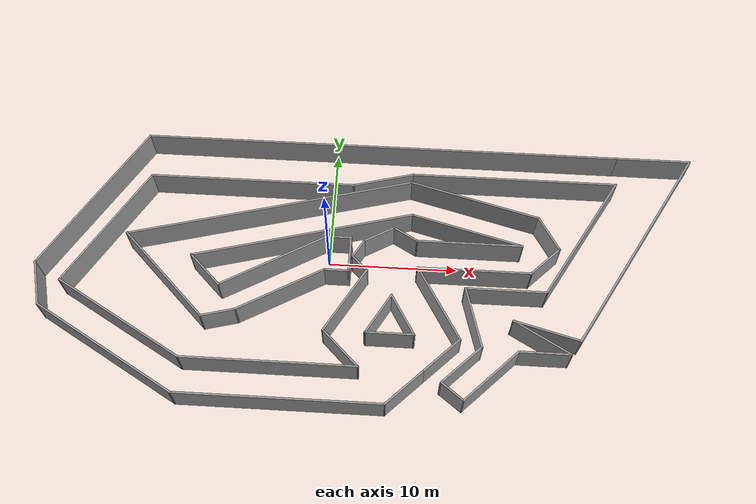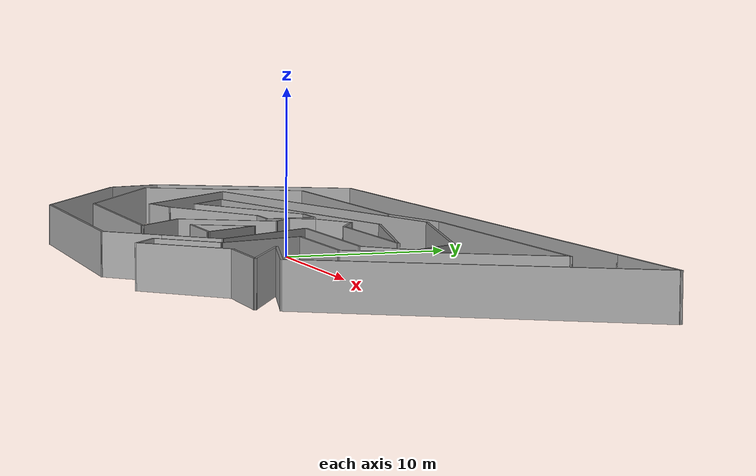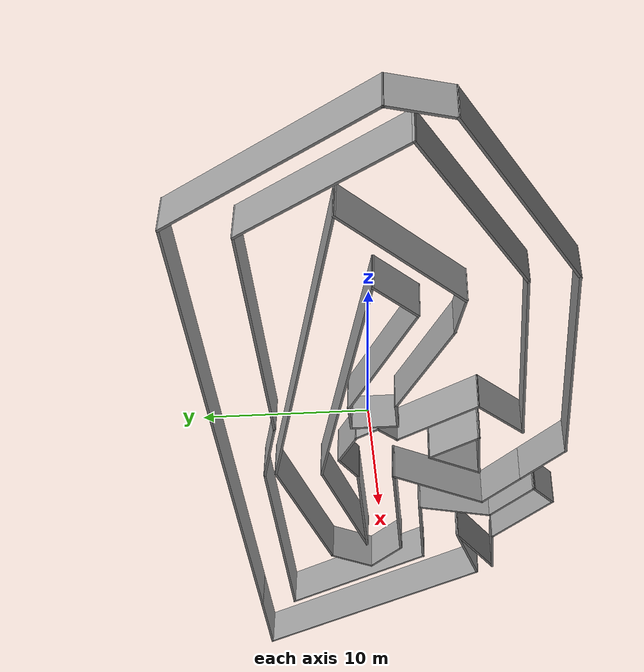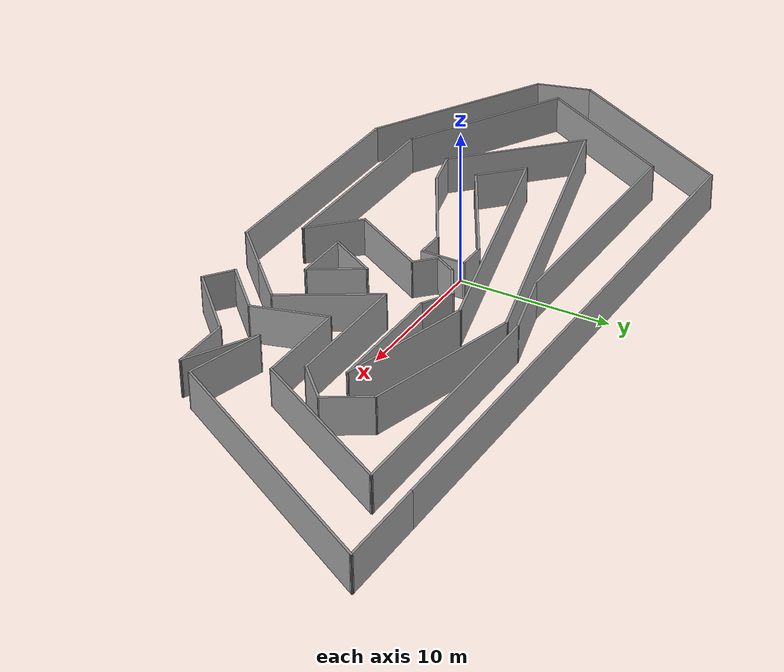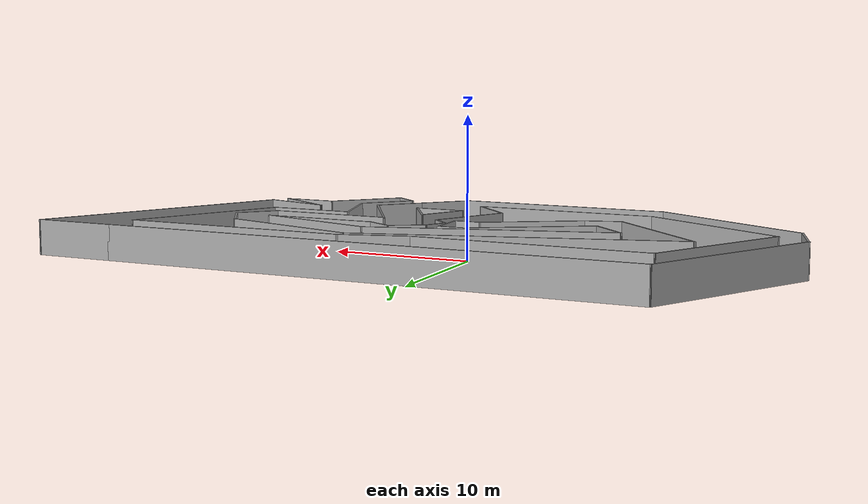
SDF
<?xml version='1.0'?>
<sdf version='1.7'>
  <model name='test_track'>
    <pose>3.06241 -1.25515 0 0 -0 0</pose>
    <link name='Wall_10'>
      <collision name='Wall_10_Collision'>
        <geometry>
          <box>
            <size>2 0.15 2.5</size>
          </box>
        </geometry>
        <pose>0 0 1.25 0 -0 0</pose>
      </collision>
      <visual name='Wall_10_Visual'>
        <pose>0 0 1.25 0 -0 0</pose>
        <geometry>
          <box>
            <size>2 0.15 2.5</size>
          </box>
        </geometry>
        <material>
          <script>
            <uri>file://media/materials/scripts/gazebo.material</uri>
            <name>Gazebo/Grey</name>
          </script>
          <ambient>1 1 1 1</ambient>
        </material>
        <meta>
          <layer>0</layer>
        </meta>
      </visual>
      <pose>-2.32297 2.39229 0 0 -0 3.14159</pose>
    </link>
    <link name='Wall_11'>
      <collision name='Wall_11_Collision'>
        <geometry>
          <box>
            <size>9.25 0.15 2.5</size>
          </box>
        </geometry>
        <pose>0 0 1.25 0 -0 0</pose>
      </collision>
      <visual name='Wall_11_Visual'>
        <pose>0 0 1.25 0 -0 0</pose>
        <geometry>
          <box>
            <size>9.25 0.15 2.5</size>
          </box>
        </geometry>
        <material>
          <script>
            <uri>file://media/materials/scripts/gazebo.material</uri>
            <name>Gazebo/Grey</name>
          </script>
          <ambient>1 1 1 1</ambient>
        </material>
        <meta>
          <layer>0</layer>
        </meta>
      </visual>
      <pose>-7.18839 0.117285 0 0 -0 -2.61799</pose>
    </link>
    <link name='Wall_13'>
      <collision name='Wall_13_Collision'>
        <geometry>
          <box>
            <size>7.5 0.15 2.5</size>
          </box>
        </geometry>
        <pose>0 0 1.25 0 -0 0</pose>
      </collision>
      <visual name='Wall_13_Visual'>
        <pose>0 0 1.25 0 -0 0</pose>
        <geometry>
          <box>
            <size>7.5 0.15 2.5</size>
          </box>
        </geometry>
        <material>
          <script>
            <uri>file://media/materials/scripts/gazebo.material</uri>
            <name>Gazebo/Grey</name>
          </script>
          <ambient>1 1 1 1</ambient>
        </material>
        <meta>
          <layer>0</layer>
        </meta>
      </visual>
      <pose>-6.43061 -2.29521 0 0 -0 -2.61799</pose>
    </link>
    <link name='Wall_15'>
      <collision name='Wall_15_Collision'>
        <geometry>
          <box>
            <size>3.5 0.15 2.5</size>
          </box>
        </geometry>
        <pose>0 0 1.25 0 -0 0</pose>
      </collision>
      <visual name='Wall_15_Visual'>
        <pose>0 0 1.25 0 -0 0</pose>
        <geometry>
          <box>
            <size>3.5 0.15 2.5</size>
          </box>
        </geometry>
        <material>
          <script>
            <uri>file://media/materials/scripts/gazebo.material</uri>
            <name>Gazebo/Grey</name>
          </script>
          <ambient>1 1 1 1</ambient>
        </material>
        <meta>
          <layer>0</layer>
        </meta>
      </visual>
      <pose>-12.3132 -0.973311 0 0 -0 2.35619</pose>
    </link>
    <link name='Wall_16'>
      <collision name='Wall_16_Collision'>
        <geometry>
          <box>
            <size>17.5 0.15 2.5</size>
          </box>
        </geometry>
        <pose>0 0 1.25 0 -0 0</pose>
      </collision>
      <visual name='Wall_16_Visual'>
        <pose>0 0 1.25 0 -0 0</pose>
        <geometry>
          <box>
            <size>17.5 0.15 2.5</size>
          </box>
        </geometry>
        <material>
          <script>
            <uri>file://media/materials/scripts/gazebo.material</uri>
            <name>Gazebo/Grey</name>
          </script>
          <ambient>1 1 1 1</ambient>
        </material>
        <meta>
          <layer>0</layer>
        </meta>
      </visual>
      <pose>-5.1182 2.45635 0 0 -0 0.261799</pose>
    </link>
    <link name='Wall_18'>
      <collision name='Wall_18_Collision'>
        <geometry>
          <box>
            <size>2.75 0.15 2.5</size>
          </box>
        </geometry>
        <pose>0 0 1.25 0 -0 0</pose>
      </collision>
      <visual name='Wall_18_Visual'>
        <pose>0 0 1.25 0 -0 0</pose>
        <geometry>
          <box>
            <size>2.75 0.15 2.5</size>
          </box>
        </geometry>
        <material>
          <script>
            <uri>file://media/materials/scripts/gazebo.material</uri>
            <name>Gazebo/Grey</name>
          </script>
          <ambient>1 1 1 1</ambient>
        </material>
        <meta>
          <layer>0</layer>
        </meta>
      </visual>
      <pose>-10.869 -4.46918 0 0 -0 -2.87979</pose>
    </link>
    <link name='Wall_19'>
      <collision name='Wall_19_Collision'>
        <geometry>
          <box>
            <size>9.5 0.15 2.5</size>
          </box>
        </geometry>
        <pose>0 0 1.25 0 -0 0</pose>
      </collision>
      <visual name='Wall_19_Visual'>
        <pose>0 0 1.25 0 -0 0</pose>
        <geometry>
          <box>
            <size>9.5 0.15 2.5</size>
          </box>
        </geometry>
        <material>
          <script>
            <uri>file://media/materials/scripts/gazebo.material</uri>
            <name>Gazebo/Grey</name>
          </script>
          <ambient>1 1 1 1</ambient>
        </material>
        <meta>
          <layer>0</layer>
        </meta>
      </visual>
      <pose>-15.4304 -1.49992 0 0 -0 2.35619</pose>
    </link>
    <link name='Wall_20'>
      <collision name='Wall_20_Collision'>
        <geometry>
          <box>
            <size>22.75 0.15 2.5</size>
          </box>
        </geometry>
        <pose>0 0 1.25 0 -0 0</pose>
      </collision>
      <visual name='Wall_20_Visual'>
        <pose>0 0 1.25 0 -0 0</pose>
        <geometry>
          <box>
            <size>22.75 0.15 2.5</size>
          </box>
        </geometry>
        <material>
          <script>
            <uri>file://media/materials/scripts/gazebo.material</uri>
            <name>Gazebo/Grey</name>
          </script>
          <ambient>1 1 1 1</ambient>
        </material>
        <meta>
          <layer>0</layer>
        </meta>
      </visual>
      <pose>-7.82115 4.73046 0 0 -0 0.261799</pose>
    </link>
    <link name='Wall_21'>
      <collision name='Wall_21_Collision'>
        <geometry>
          <box>
            <size>10.5 0.15 2.5</size>
          </box>
        </geometry>
        <pose>0 0 1.25 0 -0 0</pose>
      </collision>
      <visual name='Wall_21_Visual'>
        <pose>0 0 1.25 0 -0 0</pose>
        <geometry>
          <box>
            <size>10.5 0.15 2.5</size>
          </box>
        </geometry>
        <material>
          <script>
            <uri>file://media/materials/scripts/gazebo.material</uri>
            <name>Gazebo/Grey</name>
          </script>
          <ambient>1 1 1 1</ambient>
        </material>
        <meta>
          <layer>0</layer>
        </meta>
      </visual>
      <pose>8.09248 6.31573 0 0 -0 -0.261799</pose>
    </link>
    <link name='Wall_23'>
      <collision name='Wall_23_Collision'>
        <geometry>
          <box>
            <size>9 0.15 2.5</size>
          </box>
        </geometry>
        <pose>0 0 1.25 0 -0 0</pose>
      </collision>
      <visual name='Wall_23_Visual'>
        <pose>0 0 1.25 0 -0 0</pose>
        <geometry>
          <box>
            <size>9 0.15 2.5</size>
          </box>
        </geometry>
        <material>
          <script>
            <uri>file://media/materials/scripts/gazebo.material</uri>
            <name>Gazebo/Grey</name>
          </script>
          <ambient>1 1 1 1</ambient>
        </material>
        <meta>
          <layer>0</layer>
        </meta>
      </visual>
      <pose>7.53543 3.55633 0 0 -0 -0.261799</pose>
    </link>
    <link name='Wall_24'>
      <collision name='Wall_24_Collision'>
        <geometry>
          <box>
            <size>8.25 0.15 2.5</size>
          </box>
        </geometry>
        <pose>0 0 1.25 0 -0 0</pose>
      </collision>
      <visual name='Wall_24_Visual'>
        <pose>0 0 1.25 0 -0 0</pose>
        <geometry>
          <box>
            <size>8.25 0.15 2.5</size>
          </box>
        </geometry>
        <material>
          <script>
            <uri>file://media/materials/scripts/gazebo.material</uri>
            <name>Gazebo/Grey</name>
          </script>
          <ambient>1 1 1 1</ambient>
        </material>
        <meta>
          <layer>0</layer>
        </meta>
      </visual>
      <pose>7.75965 2.41106 0 0 -0 3.14159</pose>
    </link>
    <link name='Wall_26'>
      <collision name='Wall_26_Collision'>
        <geometry>
          <box>
            <size>3.25 0.15 2.5</size>
          </box>
        </geometry>
        <pose>0 0 1.25 0 -0 0</pose>
      </collision>
      <visual name='Wall_26_Visual'>
        <pose>0 0 1.25 0 -0 0</pose>
        <geometry>
          <box>
            <size>3.25 0.15 2.5</size>
          </box>
        </geometry>
        <material>
          <script>
            <uri>file://media/materials/scripts/gazebo.material</uri>
            <name>Gazebo/Grey</name>
          </script>
          <ambient>1 1 1 1</ambient>
        </material>
        <meta>
          <layer>0</layer>
        </meta>
      </visual>
      <pose>13.8661 3.634 0 0 -0 -1.0472</pose>
    </link>
    <link name='Wall_27'>
      <collision name='Wall_27_Collision'>
        <geometry>
          <box>
            <size>3.25 0.15 2.5</size>
          </box>
        </geometry>
        <pose>0 0 1.25 0 -0 0</pose>
      </collision>
      <visual name='Wall_27_Visual'>
        <pose>0 0 1.25 0 -0 0</pose>
        <geometry>
          <box>
            <size>3.25 0.15 2.5</size>
          </box>
        </geometry>
        <material>
          <script>
            <uri>file://media/materials/scripts/gazebo.material</uri>
            <name>Gazebo/Grey</name>
          </script>
          <ambient>1 1 1 1</ambient>
        </material>
        <meta>
          <layer>0</layer>
        </meta>
      </visual>
      <pose>13.5451 1.19564 0 0 -0 -2.35619</pose>
    </link>
    <link name='Wall_28'>
      <collision name='Wall_28_Collision'>
        <geometry>
          <box>
            <size>8.75 0.15 2.5</size>
          </box>
        </geometry>
        <pose>0 0 1.25 0 -0 0</pose>
      </collision>
      <visual name='Wall_28_Visual'>
        <pose>0 0 1.25 0 -0 0</pose>
        <geometry>
          <box>
            <size>8.75 0.15 2.5</size>
          </box>
        </geometry>
        <material>
          <script>
            <uri>file://media/materials/scripts/gazebo.material</uri>
            <name>Gazebo/Grey</name>
          </script>
          <ambient>1 1 1 1</ambient>
        </material>
        <meta>
          <layer>0</layer>
        </meta>
      </visual>
      <pose>8.14911 0.099628 0 0 -0 3.14159</pose>
    </link>
    <link name='Wall_30'>
      <collision name='Wall_30_Collision'>
        <geometry>
          <box>
            <size>2.25 0.15 2.5</size>
          </box>
        </geometry>
        <pose>0 0 1.25 0 -0 0</pose>
      </collision>
      <visual name='Wall_30_Visual'>
        <pose>0 0 1.25 0 -0 0</pose>
        <geometry>
          <box>
            <size>2.25 0.15 2.5</size>
          </box>
        </geometry>
        <material>
          <script>
            <uri>file://media/materials/scripts/gazebo.material</uri>
            <name>Gazebo/Grey</name>
          </script>
          <ambient>1 1 1 1</ambient>
        </material>
        <meta>
          <layer>0</layer>
        </meta>
      </visual>
      <pose>2.80032 2.93606 0 0 -0 2.61799</pose>
    </link>
    <link name='Wall_31'>
      <collision name='Wall_31_Collision'>
        <geometry>
          <box>
            <size>2.75 0.15 2.5</size>
          </box>
        </geometry>
        <pose>0 0 1.25 0 -0 0</pose>
      </collision>
      <visual name='Wall_31_Visual'>
        <pose>0 0 1.25 0 -0 0</pose>
        <geometry>
          <box>
            <size>2.75 0.15 2.5</size>
          </box>
        </geometry>
        <material>
          <script>
            <uri>file://media/materials/scripts/gazebo.material</uri>
            <name>Gazebo/Grey</name>
          </script>
          <ambient>1 1 1 1</ambient>
        </material>
        <meta>
          <layer>0</layer>
        </meta>
      </visual>
      <pose>0.765162 2.81106 0 0 -0 -2.61799</pose>
    </link>
    <link name='Wall_32'>
      <collision name='Wall_32_Collision'>
        <geometry>
          <box>
            <size>1.75 0.15 2.5</size>
          </box>
        </geometry>
        <pose>0 0 1.25 0 -0 0</pose>
      </collision>
      <visual name='Wall_32_Visual'>
        <pose>0 0 1.25 0 -0 0</pose>
        <geometry>
          <box>
            <size>1.75 0.15 2.5</size>
          </box>
        </geometry>
        <material>
          <script>
            <uri>file://media/materials/scripts/gazebo.material</uri>
            <name>Gazebo/Grey</name>
          </script>
          <ambient>1 1 1 1</ambient>
        </material>
        <meta>
          <layer>0</layer>
        </meta>
      </visual>
      <pose>-0.760671 1.46823 0 0 -0 -2.0944</pose>
    </link>
    <link name='Wall_33'>
      <collision name='Wall_33_Collision'>
        <geometry>
          <box>
            <size>1.75 0.15 2.5</size>
          </box>
        </geometry>
        <pose>0 0 1.25 0 -0 0</pose>
      </collision>
      <visual name='Wall_33_Visual'>
        <pose>0 0 1.25 0 -0 0</pose>
        <geometry>
          <box>
            <size>1.75 0.15 2.5</size>
          </box>
        </geometry>
        <material>
          <script>
            <uri>file://media/materials/scripts/gazebo.material</uri>
            <name>Gazebo/Grey</name>
          </script>
          <ambient>1 1 1 1</ambient>
        </material>
        <meta>
          <layer>0</layer>
        </meta>
      </visual>
      <pose>-0.594985 0.209729 0 0 -0 -0.785398</pose>
    </link>
    <link name='Wall_34'>
      <collision name='Wall_34_Collision'>
        <geometry>
          <box>
            <size>6 0.15 2.5</size>
          </box>
        </geometry>
        <pose>0 0 1.25 0 -0 0</pose>
      </collision>
      <visual name='Wall_34_Visual'>
        <pose>0 0 1.25 0 -0 0</pose>
        <geometry>
          <box>
            <size>6 0.15 2.5</size>
          </box>
        </geometry>
        <material>
          <script>
            <uri>file://media/materials/scripts/gazebo.material</uri>
            <name>Gazebo/Grey</name>
          </script>
          <ambient>1 1 1 1</ambient>
        </material>
        <meta>
          <layer>0</layer>
        </meta>
      </visual>
      <pose>-1.4918 -2.88908 0 0 -0 -2.0944</pose>
    </link>
    <link name='Wall_36'>
      <collision name='Wall_36_Collision'>
        <geometry>
          <box>
            <size>6.75 0.15 2.5</size>
          </box>
        </geometry>
        <pose>0 0 1.25 0 -0 0</pose>
      </collision>
      <visual name='Wall_36_Visual'>
        <pose>0 0 1.25 0 -0 0</pose>
        <geometry>
          <box>
            <size>6.75 0.15 2.5</size>
          </box>
        </geometry>
        <material>
          <script>
            <uri>file://media/materials/scripts/gazebo.material</uri>
            <name>Gazebo/Grey</name>
          </script>
          <ambient>1 1 1 1</ambient>
        </material>
        <meta>
          <layer>0</layer>
        </meta>
      </visual>
      <pose>5.49911 -2.75826 0 0 -0 -1.0472</pose>
    </link>
    <link name='Wall_38'>
      <collision name='Wall_38_Collision'>
        <geometry>
          <box>
            <size>3.75 0.15 2.5</size>
          </box>
        </geometry>
        <pose>0 0 1.25 0 -0 0</pose>
      </collision>
      <visual name='Wall_38_Visual'>
        <pose>0 0 1.25 0 -0 0</pose>
        <geometry>
          <box>
            <size>3.75 0.15 2.5</size>
          </box>
        </geometry>
        <material>
          <script>
            <uri>file://media/materials/scripts/gazebo.material</uri>
            <name>Gazebo/Grey</name>
          </script>
          <ambient>1 1 1 1</ambient>
        </material>
        <meta>
          <layer>0</layer>
        </meta>
      </visual>
      <pose>1.06374 -3.87062 0 0 -0 -2.0944</pose>
    </link>
    <link name='Wall_39'>
      <collision name='Wall_39_Collision'>
        <geometry>
          <box>
            <size>3.75 0.15 2.5</size>
          </box>
        </geometry>
        <pose>0 0 1.25 0 -0 0</pose>
      </collision>
      <visual name='Wall_39_Visual'>
        <pose>0 0 1.25 0 -0 0</pose>
        <geometry>
          <box>
            <size>3.75 0.15 2.5</size>
          </box>
        </geometry>
        <material>
          <script>
            <uri>file://media/materials/scripts/gazebo.material</uri>
            <name>Gazebo/Grey</name>
          </script>
          <ambient>1 1 1 1</ambient>
        </material>
        <meta>
          <layer>0</layer>
        </meta>
      </visual>
      <pose>1.96374 -5.42947 0 0 -0 0</pose>
    </link>
    <link name='Wall_40'>
      <collision name='Wall_40_Collision'>
        <geometry>
          <box>
            <size>3.75 0.15 2.5</size>
          </box>
        </geometry>
        <pose>0 0 1.25 0 -0 0</pose>
      </collision>
      <visual name='Wall_40_Visual'>
        <pose>0 0 1.25 0 -0 0</pose>
        <geometry>
          <box>
            <size>3.75 0.15 2.5</size>
          </box>
        </geometry>
        <material>
          <script>
            <uri>file://media/materials/scripts/gazebo.material</uri>
            <name>Gazebo/Grey</name>
          </script>
          <ambient>1 1 1 1</ambient>
        </material>
        <meta>
          <layer>0</layer>
        </meta>
      </visual>
      <pose>2.86374 -3.87062 0 0 -0 2.0944</pose>
    </link>
    <link name='Wall_42'>
      <collision name='Wall_42_Collision'>
        <geometry>
          <box>
            <size>4 0.15 2.5</size>
          </box>
        </geometry>
        <pose>0 0 1.25 0 -0 0</pose>
      </collision>
      <visual name='Wall_42_Visual'>
        <pose>0 0 1.25 0 -0 0</pose>
        <geometry>
          <box>
            <size>4 0.15 2.5</size>
          </box>
        </geometry>
        <material>
          <script>
            <uri>file://media/materials/scripts/gazebo.material</uri>
            <name>Gazebo/Grey</name>
          </script>
          <ambient>1 1 1 1</ambient>
        </material>
        <meta>
          <layer>0</layer>
        </meta>
      </visual>
      <pose>-1.59312 -6.78338 0 0 -0 -0.785398</pose>
    </link>
    <link name='Wall_44'>
      <collision name='Wall_44_Collision'>
        <geometry>
          <box>
            <size>3.75 0.15 2.5</size>
          </box>
        </geometry>
        <pose>0 0 1.25 0 -0 0</pose>
      </collision>
      <visual name='Wall_44_Visual'>
        <pose>0 0 1.25 0 -0 0</pose>
        <geometry>
          <box>
            <size>3.75 0.15 2.5</size>
          </box>
        </geometry>
        <material>
          <script>
            <uri>file://media/materials/scripts/gazebo.material</uri>
            <name>Gazebo/Grey</name>
          </script>
          <ambient>1 1 1 1</ambient>
        </material>
        <meta>
          <layer>0</layer>
        </meta>
      </visual>
      <pose>5.87632 -6.88893 0 0 -0 -2.35619</pose>
    </link>
    <link name='Wall_46'>
      <collision name='Wall_46_Collision'>
        <geometry>
          <box>
            <size>13.25 0.15 2.5</size>
          </box>
        </geometry>
        <pose>0 0 1.25 0 -0 0</pose>
      </collision>
      <visual name='Wall_46_Visual'>
        <pose>0 0 1.25 0 -0 0</pose>
        <geometry>
          <box>
            <size>13.25 0.15 2.5</size>
          </box>
        </geometry>
        <material>
          <script>
            <uri>file://media/materials/scripts/gazebo.material</uri>
            <name>Gazebo/Grey</name>
          </script>
          <ambient>1 1 1 1</ambient>
        </material>
        <meta>
          <layer>0</layer>
        </meta>
      </visual>
      <pose>-6.78194 -8.14457 0 0 -0 3.14159</pose>
    </link>
    <link name='Wall_48'>
      <collision name='Wall_48_Collision'>
        <geometry>
          <box>
            <size>4 0.15 2.5</size>
          </box>
        </geometry>
        <pose>0 0 1.25 0 -0 0</pose>
      </collision>
      <visual name='Wall_48_Visual'>
        <pose>0 0 1.25 0 -0 0</pose>
        <geometry>
          <box>
            <size>4 0.15 2.5</size>
          </box>
        </geometry>
        <material>
          <script>
            <uri>file://media/materials/scripts/gazebo.material</uri>
            <name>Gazebo/Grey</name>
          </script>
          <ambient>1 1 1 1</ambient>
        </material>
        <meta>
          <layer>0</layer>
        </meta>
      </visual>
      <pose>3.24235 -9.5229 0 0 -0 -2.35619</pose>
    </link>
    <link name='Wall_49'>
      <collision name='Wall_49_Collision'>
        <geometry>
          <box>
            <size>15.5 0.15 2.5</size>
          </box>
        </geometry>
        <pose>0 0 1.25 0 -0 0</pose>
      </collision>
      <visual name='Wall_49_Visual'>
        <pose>0 0 1.25 0 -0 0</pose>
        <geometry>
          <box>
            <size>15.5 0.15 2.5</size>
          </box>
        </geometry>
        <material>
          <script>
            <uri>file://media/materials/scripts/gazebo.material</uri>
            <name>Gazebo/Grey</name>
          </script>
          <ambient>1 1 1 1</ambient>
        </material>
        <meta>
          <layer>0</layer>
        </meta>
      </visual>
      <pose>-5.79383 -10.8841 0 0 -0 3.14159</pose>
    </link>
    <link name='Wall_50'>
      <collision name='Wall_50_Collision'>
        <geometry>
          <box>
            <size>12.75 0.15 2.5</size>
          </box>
        </geometry>
        <pose>0 0 1.25 0 -0 0</pose>
      </collision>
      <visual name='Wall_50_Visual'>
        <pose>0 0 1.25 0 -0 0</pose>
        <geometry>
          <box>
            <size>12.75 0.15 2.5</size>
          </box>
        </geometry>
        <material>
          <script>
            <uri>file://media/materials/scripts/gazebo.material</uri>
            <name>Gazebo/Grey</name>
          </script>
          <ambient>1 1 1 1</ambient>
        </material>
        <meta>
          <layer>0</layer>
        </meta>
      </visual>
      <pose>-18.9248 -7.73409 0 0 -0 2.61799</pose>
    </link>
    <link name='Wall_52'>
      <collision name='Wall_52_Collision'>
        <geometry>
          <box>
            <size>11.5 0.15 2.5</size>
          </box>
        </geometry>
        <pose>0 0 1.25 0 -0 0</pose>
      </collision>
      <visual name='Wall_52_Visual'>
        <pose>0 0 1.25 0 -0 0</pose>
        <geometry>
          <box>
            <size>11.5 0.15 2.5</size>
          </box>
        </geometry>
        <material>
          <script>
            <uri>file://media/materials/scripts/gazebo.material</uri>
            <name>Gazebo/Grey</name>
          </script>
          <ambient>1 1 1 1</ambient>
        </material>
        <meta>
          <layer>0</layer>
        </meta>
      </visual>
      <pose>-18.2466 -5.30707 0 0 -0 2.61799</pose>
    </link>
    <link name='Wall_54'>
      <collision name='Wall_54_Collision'>
        <geometry>
          <box>
            <size>11.25 0.15 2.5</size>
          </box>
        </geometry>
        <pose>0 0 1.25 0 -0 0</pose>
      </collision>
      <visual name='Wall_54_Visual'>
        <pose>0 0 1.25 0 -0 0</pose>
        <geometry>
          <box>
            <size>11.25 0.15 2.5</size>
          </box>
        </geometry>
        <material>
          <script>
            <uri>file://media/materials/scripts/gazebo.material</uri>
            <name>Gazebo/Grey</name>
          </script>
          <ambient>1 1 1 1</ambient>
        </material>
        <meta>
          <layer>0</layer>
        </meta>
      </visual>
      <pose>-20.3863 2.33688 0 0 -0 1.0472</pose>
    </link>
    <link name='Wall_56'>
      <collision name='Wall_56_Collision'>
        <geometry>
          <box>
            <size>3.75 0.15 2.5</size>
          </box>
        </geometry>
        <pose>0 0 1.25 0 -0 0</pose>
      </collision>
      <visual name='Wall_56_Visual'>
        <pose>0 0 1.25 0 -0 0</pose>
        <geometry>
          <box>
            <size>3.75 0.15 2.5</size>
          </box>
        </geometry>
        <material>
          <script>
            <uri>file://media/materials/scripts/gazebo.material</uri>
            <name>Gazebo/Grey</name>
          </script>
          <ambient>1 1 1 1</ambient>
        </material>
        <meta>
          <layer>0</layer>
        </meta>
      </visual>
      <pose>-24.8466 -2.84542 0 0 -0 1.8326</pose>
    </link>
    <link name='Wall_57'>
      <collision name='Wall_57_Collision'>
        <geometry>
          <box>
            <size>14 0.15 2.5</size>
          </box>
        </geometry>
        <pose>0 0 1.25 0 -0 0</pose>
      </collision>
      <visual name='Wall_57_Visual'>
        <pose>0 0 1.25 0 -0 0</pose>
        <geometry>
          <box>
            <size>14 0.15 2.5</size>
          </box>
        </geometry>
        <material>
          <script>
            <uri>file://media/materials/scripts/gazebo.material</uri>
            <name>Gazebo/Grey</name>
          </script>
          <ambient>1 1 1 1</ambient>
        </material>
        <meta>
          <layer>0</layer>
        </meta>
      </visual>
      <pose>-21.85 4.89047 0 0 -0 1.0472</pose>
    </link>
    <link name='Wall_58'>
      <collision name='Wall_58_Collision'>
        <geometry>
          <box>
            <size>38 0.15 2.5</size>
          </box>
        </geometry>
        <pose>0 0 1.25 0 -0 0</pose>
      </collision>
      <visual name='Wall_58_Visual'>
        <pose>0 0 1.25 0 -0 0</pose>
        <geometry>
          <box>
            <size>38 0.15 2.5</size>
          </box>
        </geometry>
        <material>
          <script>
            <uri>file://media/materials/scripts/gazebo.material</uri>
            <name>Gazebo/Grey</name>
          </script>
          <ambient>1 1 1 1</ambient>
        </material>
        <meta>
          <layer>0</layer>
        </meta>
      </visual>
      <pose>0.537499 10.8877 0 0 -0 0</pose>
    </link>
    <link name='Wall_60'>
      <collision name='Wall_60_Collision'>
        <geometry>
          <box>
            <size>16.25 0.15 2.5</size>
          </box>
        </geometry>
        <pose>0 0 1.25 0 -0 0</pose>
      </collision>
      <visual name='Wall_60_Visual'>
        <pose>0 0 1.25 0 -0 0</pose>
        <geometry>
          <box>
            <size>16.25 0.15 2.5</size>
          </box>
        </geometry>
        <material>
          <script>
            <uri>file://media/materials/scripts/gazebo.material</uri>
            <name>Gazebo/Grey</name>
          </script>
          <ambient>1 1 1 1</ambient>
        </material>
        <meta>
          <layer>0</layer>
        </meta>
      </visual>
      <pose>-9.56133 7.14332 0 0 -0 0</pose>
    </link>
    <link name='Wall_61'>
      <collision name='Wall_61_Collision'>
        <geometry>
          <box>
            <size>5 0.15 2.5</size>
          </box>
        </geometry>
        <pose>0 0 1.25 0 -0 0</pose>
      </collision>
      <visual name='Wall_61_Visual'>
        <pose>0 0 1.25 0 -0 0</pose>
        <geometry>
          <box>
            <size>5 0.15 2.5</size>
          </box>
        </geometry>
        <material>
          <script>
            <uri>file://media/materials/scripts/gazebo.material</uri>
            <name>Gazebo/Grey</name>
          </script>
          <ambient>1 1 1 1</ambient>
        </material>
        <meta>
          <layer>0</layer>
        </meta>
      </visual>
      <pose>0.831043 7.77095 0 0 -0 0.261799</pose>
    </link>
    <link name='Wall_62'>
      <collision name='Wall_62_Collision'>
        <geometry>
          <box>
            <size>16.25 0.15 2.5</size>
          </box>
        </geometry>
        <pose>0 0 1.25 0 -0 0</pose>
      </collision>
      <visual name='Wall_62_Visual'>
        <pose>0 0 1.25 0 -0 0</pose>
        <geometry>
          <box>
            <size>16.25 0.15 2.5</size>
          </box>
        </geometry>
        <material>
          <script>
            <uri>file://media/materials/scripts/gazebo.material</uri>
            <name>Gazebo/Grey</name>
          </script>
          <ambient>1 1 1 1</ambient>
        </material>
        <meta>
          <layer>0</layer>
        </meta>
      </visual>
      <pose>11.2234 8.39859 0 0 -0 0</pose>
    </link>
    <link name='Wall_63'>
      <collision name='Wall_63_Collision'>
        <geometry>
          <box>
            <size>11.5 0.15 2.5</size>
          </box>
        </geometry>
        <pose>0 0 1.25 0 -0 0</pose>
      </collision>
      <visual name='Wall_63_Visual'>
        <pose>0 0 1.25 0 -0 0</pose>
        <geometry>
          <box>
            <size>11.5 0.15 2.5</size>
          </box>
        </geometry>
        <material>
          <script>
            <uri>file://media/materials/scripts/gazebo.material</uri>
            <name>Gazebo/Grey</name>
          </script>
          <ambient>1 1 1 1</ambient>
        </material>
        <meta>
          <layer>0</layer>
        </meta>
      </visual>
      <pose>16.4359 3.48389 0 0 -0 -2.0944</pose>
    </link>
    <link name='Wall_64'>
      <collision name='Wall_64_Collision'>
        <geometry>
          <box>
            <size>6.25 0.15 2.5</size>
          </box>
        </geometry>
        <pose>0 0 1.25 0 -0 0</pose>
      </collision>
      <visual name='Wall_64_Visual'>
        <pose>0 0 1.25 0 -0 0</pose>
        <geometry>
          <box>
            <size>6.25 0.15 2.5</size>
          </box>
        </geometry>
        <material>
          <script>
            <uri>file://media/materials/scripts/gazebo.material</uri>
            <name>Gazebo/Grey</name>
          </script>
          <ambient>1 1 1 1</ambient>
        </material>
        <meta>
          <layer>0</layer>
        </meta>
      </visual>
      <pose>10.5484 -1.4308 0 0 -0 3.14159</pose>
    </link>
    <link name='Wall_65'>
      <collision name='Wall_65_Collision'>
        <geometry>
          <box>
            <size>5 0.15 2.5</size>
          </box>
        </geometry>
        <pose>0 0 1.25 0 -0 0</pose>
      </collision>
      <visual name='Wall_65_Visual'>
        <pose>0 0 1.25 0 -0 0</pose>
        <geometry>
          <box>
            <size>5 0.15 2.5</size>
          </box>
        </geometry>
        <material>
          <script>
            <uri>file://media/materials/scripts/gazebo.material</uri>
            <name>Gazebo/Grey</name>
          </script>
          <ambient>1 1 1 1</ambient>
        </material>
        <meta>
          <layer>0</layer>
        </meta>
      </visual>
      <pose>8.12605 -3.77317 0 0 -0 -1.309</pose>
    </link>
    <link name='Wall_66'>
      <collision name='Wall_66_Collision'>
        <geometry>
          <box>
            <size>4.25 0.15 2.5</size>
          </box>
        </geometry>
        <pose>0 0 1.25 0 -0 0</pose>
      </collision>
      <visual name='Wall_66_Visual'>
        <pose>0 0 1.25 0 -0 0</pose>
        <geometry>
          <box>
            <size>4.25 0.15 2.5</size>
          </box>
        </geometry>
        <material>
          <script>
            <uri>file://media/materials/scripts/gazebo.material</uri>
            <name>Gazebo/Grey</name>
          </script>
          <ambient>1 1 1 1</ambient>
        </material>
        <meta>
          <layer>0</layer>
        </meta>
      </visual>
      <pose>7.30412 -7.56511 0 0 -0 -2.35619</pose>
    </link>
    <link name='Wall_68'>
      <collision name='Wall_68_Collision'>
        <geometry>
          <box>
            <size>6 0.15 2.5</size>
          </box>
        </geometry>
        <pose>0 0 1.25 0 -0 0</pose>
      </collision>
      <visual name='Wall_68_Visual'>
        <pose>0 0 1.25 0 -0 0</pose>
        <geometry>
          <box>
            <size>6 0.15 2.5</size>
          </box>
        </geometry>
        <material>
          <script>
            <uri>file://media/materials/scripts/gazebo.material</uri>
            <name>Gazebo/Grey</name>
          </script>
          <ambient>1 1 1 1</ambient>
        </material>
        <meta>
          <layer>0</layer>
        </meta>
      </visual>
      <pose>22.3875 10.8877 0 0 -0 0</pose>
    </link>
    <link name='Wall_69'>
      <collision name='Wall_69_Collision'>
        <geometry>
          <box>
            <size>18.75 0.15 2.5</size>
          </box>
        </geometry>
        <pose>0 0 1.25 0 -0 0</pose>
      </collision>
      <visual name='Wall_69_Visual'>
        <pose>0 0 1.25 0 -0 0</pose>
        <geometry>
          <box>
            <size>18.75 0.15 2.5</size>
          </box>
        </geometry>
        <material>
          <script>
            <uri>file://media/materials/scripts/gazebo.material</uri>
            <name>Gazebo/Grey</name>
          </script>
          <ambient>1 1 1 1</ambient>
        </material>
        <meta>
          <layer>0</layer>
        </meta>
      </visual>
      <pose>20.6625 2.83366 0 0 -0 -2.0944</pose>
    </link>
    <link name='Wall_7'>
      <collision name='Wall_7_Collision'>
        <geometry>
          <box>
            <size>2 0.15 2.5</size>
          </box>
        </geometry>
        <pose>0 0 1.25 0 -0 0</pose>
      </collision>
      <visual name='Wall_7_Visual'>
        <pose>0 0 1.25 0 -0 0</pose>
        <geometry>
          <box>
            <size>2 0.15 2.5</size>
          </box>
        </geometry>
        <material>
          <script>
            <uri>file://media/materials/scripts/gazebo.material</uri>
            <name>Gazebo/Grey</name>
          </script>
          <ambient>1 1 1 1</ambient>
        </material>
        <meta>
          <layer>0</layer>
        </meta>
      </visual>
      <pose>-2.32297 -0.457714 0 0 -0 0</pose>
    </link>
    <link name='Wall_70'>
      <collision name='Wall_70_Collision'>
        <geometry>
          <box>
            <size>5.25 0.15 2.5</size>
          </box>
        </geometry>
        <pose>0 0 1.25 0 -0 0</pose>
      </collision>
      <visual name='Wall_70_Visual'>
        <pose>0 0 1.25 0 -0 0</pose>
        <geometry>
          <box>
            <size>5.25 0.15 2.5</size>
          </box>
        </geometry>
        <material>
          <script>
            <uri>file://media/materials/scripts/gazebo.material</uri>
            <name>Gazebo/Grey</name>
          </script>
          <ambient>1 1 1 1</ambient>
        </material>
        <meta>
          <layer>0</layer>
        </meta>
      </visual>
      <pose>13.5494 -4.56038 0 0 -0 2.87979</pose>
    </link>
    <link name='Wall_71'>
      <collision name='Wall_71_Collision'>
        <geometry>
          <box>
            <size>5 0.15 2.5</size>
          </box>
        </geometry>
        <pose>0 0 1.25 0 -0 0</pose>
      </collision>
      <visual name='Wall_71_Visual'>
        <pose>0 0 1.25 0 -0 0</pose>
        <geometry>
          <box>
            <size>5 0.15 2.5</size>
          </box>
        </geometry>
        <material>
          <script>
            <uri>file://media/materials/scripts/gazebo.material</uri>
            <name>Gazebo/Grey</name>
          </script>
          <ambient>1 1 1 1</ambient>
        </material>
        <meta>
          <layer>0</layer>
        </meta>
      </visual>
      <pose>13.1864 -5.1129 0 0 -0 -0.523599</pose>
    </link>
    <link name='Wall_72'>
      <collision name='Wall_72_Collision'>
        <geometry>
          <box>
            <size>4 0.15 2.5</size>
          </box>
        </geometry>
        <pose>0 0 1.25 0 -0 0</pose>
      </collision>
      <visual name='Wall_72_Visual'>
        <pose>0 0 1.25 0 -0 0</pose>
        <geometry>
          <box>
            <size>4 0.15 2.5</size>
          </box>
        </geometry>
        <material>
          <script>
            <uri>file://media/materials/scripts/gazebo.material</uri>
            <name>Gazebo/Grey</name>
          </script>
          <ambient>1 1 1 1</ambient>
        </material>
        <meta>
          <layer>0</layer>
        </meta>
      </visual>
      <pose>13.3615 -6.3254 0 0 -0 3.14159</pose>
    </link>
    <link name='Wall_73'>
      <collision name='Wall_73_Collision'>
        <geometry>
          <box>
            <size>5.75 0.15 2.5</size>
          </box>
        </geometry>
        <pose>0 0 1.25 0 -0 0</pose>
      </collision>
      <visual name='Wall_73_Visual'>
        <pose>0 0 1.25 0 -0 0</pose>
        <geometry>
          <box>
            <size>5.75 0.15 2.5</size>
          </box>
        </geometry>
        <material>
          <script>
            <uri>file://media/materials/scripts/gazebo.material</uri>
            <name>Gazebo/Grey</name>
          </script>
          <ambient>1 1 1 1</ambient>
        </material>
        <meta>
          <layer>0</layer>
        </meta>
      </visual>
      <pose>9.4566 -8.30529 0 0 -0 -2.35619</pose>
    </link>
    <link name='Wall_74'>
      <collision name='Wall_74_Collision'>
        <geometry>
          <box>
            <size>2.21048 0.15 2.5</size>
          </box>
        </geometry>
        <pose>0 0 1.25 0 -0 0</pose>
      </collision>
      <visual name='Wall_74_Visual'>
        <pose>0 0 1.25 0 -0 0</pose>
        <geometry>
          <box>
            <size>2.21048 0.15 2.5</size>
          </box>
        </geometry>
        <material>
          <script>
            <uri>file://media/materials/scripts/gazebo.material</uri>
            <name>Gazebo/Grey</name>
          </script>
          <ambient>1 1 1 1</ambient>
        </material>
        <meta>
          <layer>0</layer>
        </meta>
      </visual>
      <pose>6.66563 -9.64994 0 0 -0 2.47716</pose>
    </link>
    <link name='Wall_9'>
      <collision name='Wall_9_Collision'>
        <geometry>
          <box>
            <size>3 0.15 2.5</size>
          </box>
        </geometry>
        <pose>0 0 1.25 0 -0 0</pose>
      </collision>
      <visual name='Wall_9_Visual'>
        <pose>0 0 1.25 0 -0 0</pose>
        <geometry>
          <box>
            <size>3 0.15 2.5</size>
          </box>
        </geometry>
        <material>
          <script>
            <uri>file://media/materials/scripts/gazebo.material</uri>
            <name>Gazebo/Grey</name>
          </script>
          <ambient>1 1 1 1</ambient>
        </material>
        <meta>
          <layer>0</layer>
        </meta>
      </visual>
      <pose>-1.39797 0.967286 0 0 -0 1.5708</pose>
    </link>
    <static>1</static>
  </model>
</sdf>
